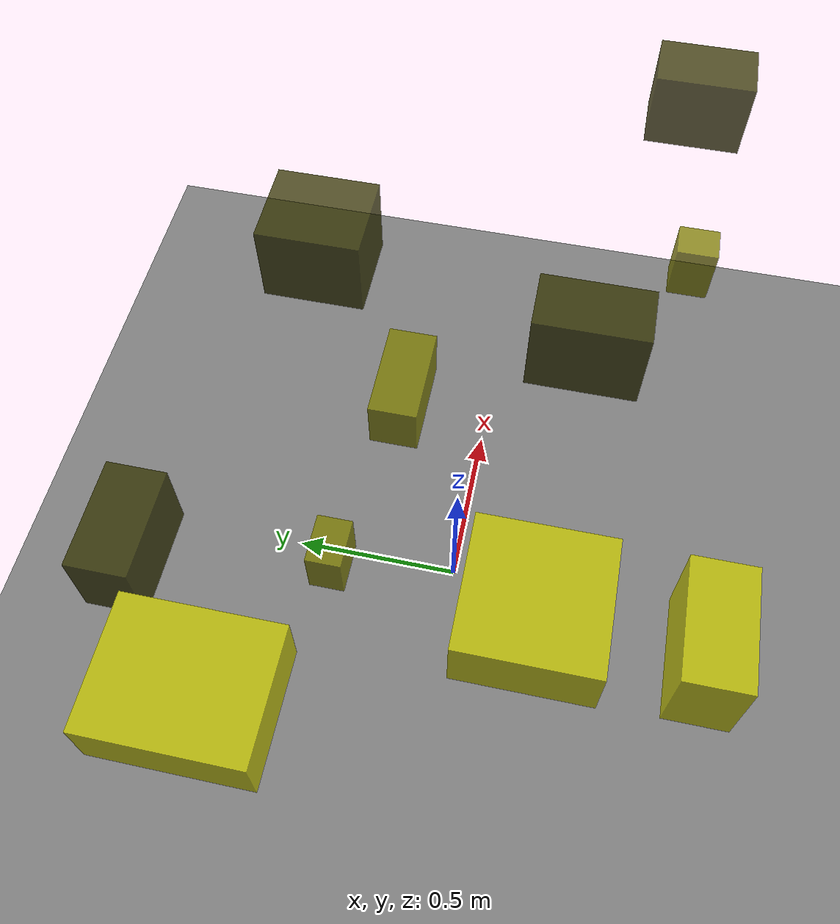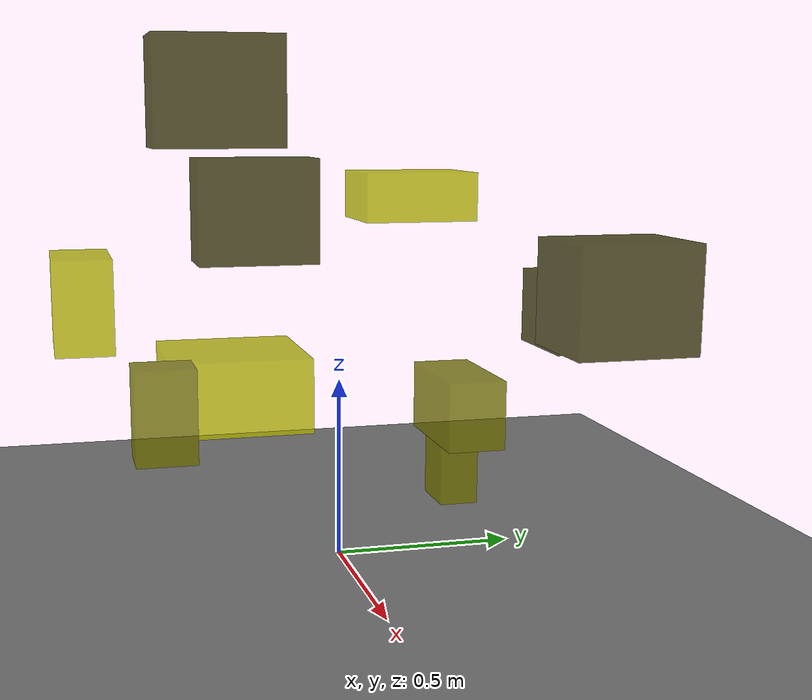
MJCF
<?xml version="1.0"?>
<mujoco model="obstacle_scene">
  <compiler angle="radian" coordinate="local"/>
  <option timestep="0.001" gravity="0 0 -9.81"/>

  <asset>
    <material name="obstacle_mat" rgba="0.8 0.8 0.0 0.8"/>
    <material name="ground_mat" rgba="0.5 0.5 0.5 1"/>
  </asset>

  <worldbody>
    <!-- Ground plane -->
    <geom name="ground" type="plane" size="3 3 0.1" material="ground_mat"/>

    <!-- Obstacles -->
    <body name="obstacle_0" pos="-0.350633 0.819923 0.615523">
      <geom name="obs_0" type="box" size="0.149669 0.083529 0.118384" rgba="0.2 0.2 0.0 0.8"/>
    </body>
    <body name="obstacle_1" pos="0.336995 0.230065 0.494401">
      <geom name="obs_1" type="box" size="0.147511 0.072112 0.086167" rgba="0.5 0.5 0.0 0.8"/>
    </body>
    <body name="obstacle_2" pos="-0.254425 -0.259299 0.443912">
      <geom name="obs_2" type="box" size="0.198093 0.200492 0.106814" rgba="0.8 0.8 0.0 0.8"/>
    </body>
    <body name="obstacle_3" pos="0.895567 -0.459138 1.259560">
      <geom name="obs_3" type="box" size="0.076552 0.123708 0.104217" rgba="0.2 0.2 0.0 0.8"/>
    </body>
    <body name="obstacle_4" pos="-0.100549 0.363763 0.196778">
      <geom name="obs_4" type="box" size="0.075722 0.054752 0.087133" rgba="0.5 0.5 0.0 0.8"/>
    </body>
    <body name="obstacle_5" pos="-0.794270 0.437792 0.955709">
      <geom name="obs_5" type="box" size="0.151782 0.187946 0.079706" rgba="0.8 0.8 0.0 0.8"/>
    </body>
    <body name="obstacle_6" pos="0.599967 0.529176 0.800424">
      <geom name="obs_6" type="box" size="0.128033 0.150753 0.131161" rgba="0.2 0.2 0.0 0.8"/>
    </body>
    <body name="obstacle_7" pos="0.877686 -0.567827 0.639978">
      <geom name="obs_7" type="box" size="0.052621 0.060872 0.094948" rgba="0.5 0.5 0.0 0.8"/>
    </body>
    <body name="obstacle_8" pos="-0.361124 -0.678815 0.690162">
      <geom name="obs_8" type="box" size="0.156456 0.083498 0.135587" rgba="0.8 0.8 0.0 0.8"/>
    </body>
    <body name="obstacle_9" pos="0.258057 -0.276598 0.989248">
      <geom name="obs_9" type="box" size="0.079385 0.146888 0.127361" rgba="0.2 0.2 0.0 0.8"/>
    </body>
  </worldbody>
</mujoco>
